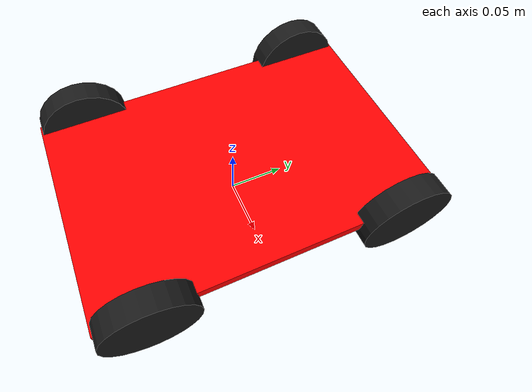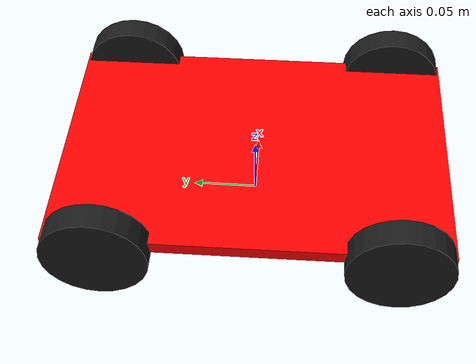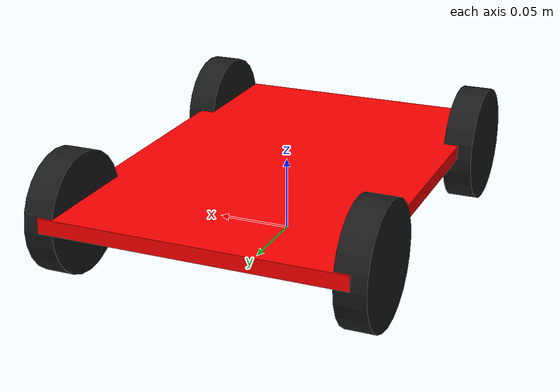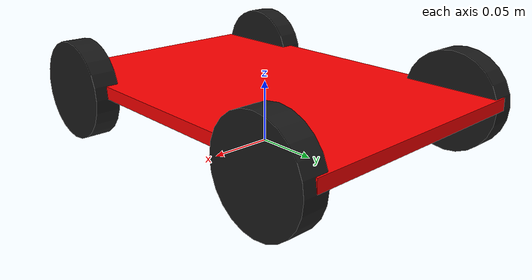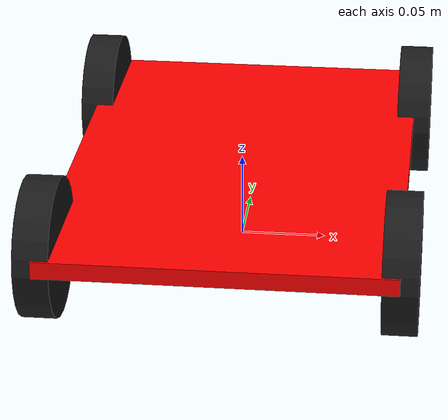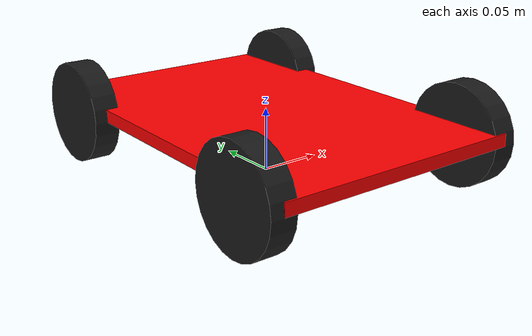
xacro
<?xml version="1.0"?>

<robot xmlns:xacro="http://www.ros.org/wiki/xacro" name="shakti">
	 <xacro:include filename="include.xacro" />
	<link name="world"></link>

	<joint name="base_j" type="fixed">
		<origin xyz="0 0 0.04" rpy="0 0 0"/>
		<parent link="world"/>
		<child link="base_l"/>
	</joint>

	<link name="base_l">
		<visual>
			<origin xyz="0 0 0.005" rpy="0 0 0"/>
			<geometry>
				<box size="0.2 0.3 0.01"/>
			</geometry>
			<material name="red">
				<color rgba="1.0 0.0 0.0 1.0"/>
			</material>
		</visual>
		<collision>
			<origin xyz="0 0 0.005" rpy="0 0 0"/>
			<geometry>
				<box size="0.2 0.3 0.01"/>
			</geometry>
		</collision>
		<xacro:inertial_box mass="1.0" x="0.2" y="0.3" z="0.01">
            		<origin xyz="0 0 0.005" rpy="0 0 0"/>
        	</xacro:inertial_box>

	</link>

	<joint name="base_to_frontleft" type="continuous">
  		<parent link="base_l"/>
  		<child link="front_left_wheel"/>
  		<origin xyz="-0.1 0.11 0" rpy="0 0 0"/>
  		<axis xyz="1 0 0"/>
	</joint>

	<link name="front_left_wheel">
		<visual>
			<origin xyz="0 0 0" rpy="0 1.5708 0"/>
			<geometry>
				<cylinder radius="0.04" length="0.02"/>
			</geometry>
			<material name="black">
				<color rgba="0.1 0.1 0.1 1"/>
			</material>
		</visual>

		<collision>
			<origin xyz="0 0 0" rpy="0 1.5708 0"/>
			<geometry>
				<cylinder radius="0.04" length="0.02"/>
			</geometry>
		</collision>

		<xacro:inertial_cylinder mass="0.2" radius="0.04" length="0.02">
			<origin xyz="0 0 0" rpy="0 1.5708 0"/>
		</xacro:inertial_cylinder>
	</link>

	<joint name="base_to_frontright" type="continuous">
		<origin xyz="0.1 0.11 0" rpy="0 0 0" />
		<parent link="base_l"/>
		<child link="front_right_wheel" />
		<axis xyz="1 0 0"/>
	</joint>

	<link name="front_right_wheel">
		<visual>
			<origin xyz="0 0 0" rpy="0 1.5708 0"/>
			<geometry>
				<cylinder radius="0.04" length="0.02"/>
			</geometry>
			<material name="black">
				<color rgba="0.1 0.1 0.1 1"/>
			</material>
		</visual>

		<collision>
			<origin xyz="0 0 0" rpy="0 1.5708 0"/>
			<geometry>
				<cylinder radius="0.04" length="0.02"/>
			</geometry>
		</collision>

		<xacro:inertial_cylinder mass="0.2" radius="0.04" length="0.02">
			<origin xyz="0 0 0" rpy="0 1.5708 0"/>
		</xacro:inertial_cylinder>
	</link>

	<joint name="base_to_backleft" type="continuous">
    		<origin xyz="-0.1 -0.11 0" rpy="0 0 0"/>
    		<parent link="base_l"/>
    		<child link="back_left_wheel"/>
    		<axis xyz="1 0 0"/>
	</joint>

	<link name="back_left_wheel">
		<visual>
			<origin xyz="0 0 0" rpy="0 1.5708 0"/>
			<geometry>
				<cylinder radius="0.04" length="0.02"/>
			</geometry>
			<material name="black">
				<color rgba="0.1 0.1 0.1 1"/>
			</material>
		</visual>

		<collision>
			<origin xyz="0 0 0" rpy="0 1.5708 0"/>
			<geometry>
				<cylinder radius="0.04" length="0.02"/>
			</geometry>
		</collision>

		<xacro:inertial_cylinder mass="0.2" radius="0.04" length="0.02">
			<origin xyz="0 0 0" rpy="0 1.5708 0"/>
		</xacro:inertial_cylinder>
	</link>

	<joint name="base_to_backright" type="continuous">
		<origin xyz="0.1 -0.11 0" rpy="0 0 0" />
		<parent link="base_l"/>
		<child link="back_right_wheel" />
		<axis xyz="1 0 0"/>
	</joint>

	<link name="back_right_wheel">
		<visual>
			<origin xyz="0 0 0" rpy="0 1.5708 0"/>
			<geometry>
				<cylinder radius="0.04" length="0.02"/>
			</geometry>
			<material name="black">
				<color rgba="0.1 0.1 0.1 1"/>
			</material>
		</visual>

		<collision>
			<origin xyz="0 0 0" rpy="0 1.5708 0"/>
			<geometry>
				<cylinder radius="0.04" length="0.02"/>
			</geometry>
		</collision>

		<xacro:inertial_cylinder mass="0.2" radius="0.04" length="0.02">
			<origin xyz="0 0 0" rpy="0 1.5708 0"/>
		</xacro:inertial_cylinder>
	</link>
        <gazebo>
		<plugin filename="libignition-gazebo-diff-drive-system.so" name="ignition::gazebo::systems::DiffDrive">
			<left_joint>base_to_frontleft</left_joint>
			<left_joint>base_to_backleft</left_joint>

			<right_joint>base_to_frontright</right_joint>
			<right_joint>base_to_backright</right_joint>

			<wheel_separation>0.2</wheel_separation>
			<wheel_radius>0.04</wheel_radius>
			<topic>cmd_vel</topic>
			<odom_topic>odom</odom_topic>
			<odom_publish_frequency>10</odom_publish_frequency>
		</plugin>
	</gazebo>

</robot>

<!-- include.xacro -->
<robot xmlns:xacro="http://www.ros.org/wiki/xacro">

	 <xacro:macro name="inertial_box" params="mass x y z *origin">
        <inertial>
            <xacro:insert_block name="origin"/>
            <mass value="${mass}" />
            <inertia ixx="${(1/12) * mass * (y*y+z*z)}" ixy="0.0" ixz="0.0"
                    iyy="${(1/12) * mass * (x*x+z*z)}" iyz="0.0"
                    izz="${(1/12) * mass * (x*x+y*y)}" />
        </inertial>
    </xacro:macro>

    <xacro:macro name="inertial_cylinder" params="mass length radius *origin">
        <inertial>
            <xacro:insert_block name="origin"/>
            <mass value="${mass}" />
            <inertia ixx="${(1/12)*mass*(3*radius*radius+ length*length)}" ixy="0.0" ixz="0.0"
            iyy="${(1/2) * mass * (radius*radius)}" iyz="0.0"  izz="${(1/12) * mass * (3*radius*radius + length*length)}"/>
        </inertial>
    </xacro:macro>

 </robot>
